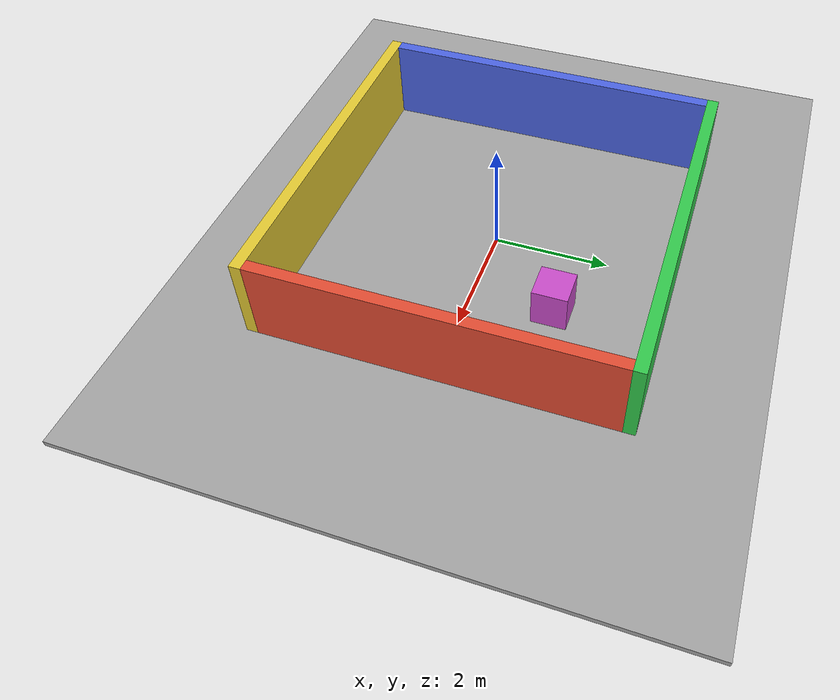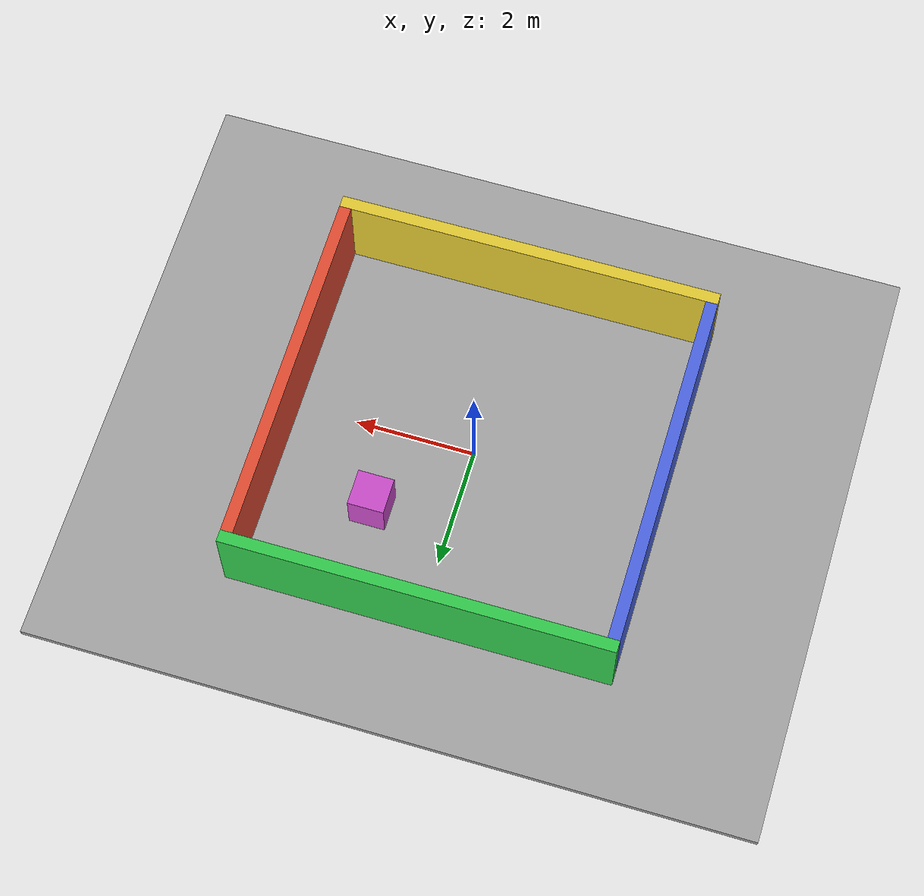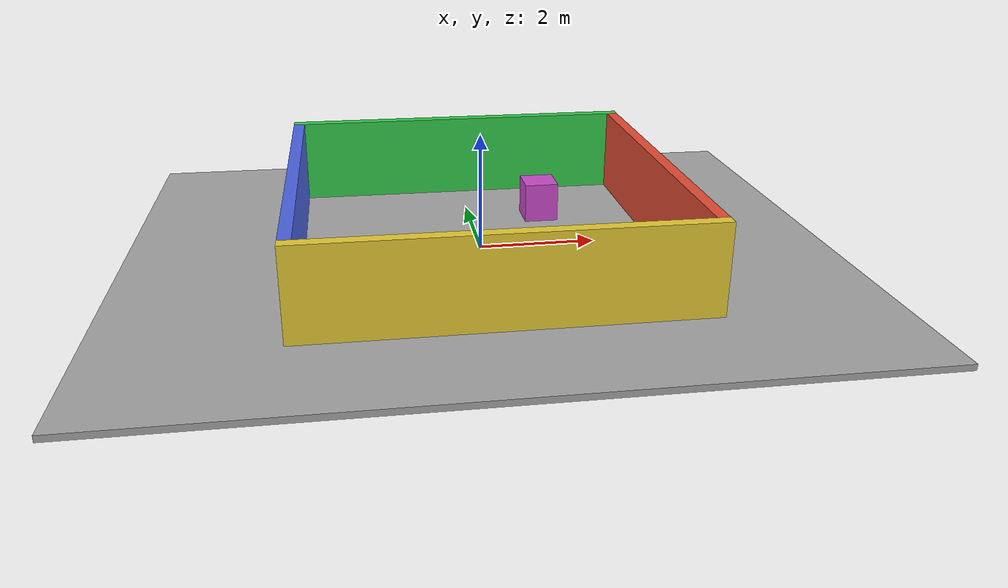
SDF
<?xml version="1.0"?>
<sdf version="1.6">
  <world name="sensor_arena">
    <gravity>0 0 -9.81</gravity>
    <physics name="default" type="ode"><max_step_size>0.001</max_step_size><real_time_update_rate>1000</real_time_update_rate></physics>
    <scene><ambient>0.5 0.5 0.5 1</ambient><background>0.8 0.85 0.9 1</background><shadows>false</shadows></scene>
    <spherical_coordinates><surface_model>EARTH_WGS84</surface_model><latitude_deg>37.5665</latitude_deg><longitude_deg>126.9780</longitude_deg><elevation>0</elevation><heading_deg>0</heading_deg></spherical_coordinates>
    <light name="sun" type="directional"><pose>0 0 8 0 0 0</pose><diffuse>0.8 0.8 0.8 1</diffuse><specular>0.2 0.2 0.2 1</specular><direction>-0.4 0.2 -1</direction><cast_shadows>false</cast_shadows></light>
    <model name="ground"><static>true</static><pose>0 0 -0.05 0 0 0</pose><link name="link">
      <collision name="collision"><geometry><box><size>12 10 0.1</size></box></geometry></collision>
      <visual name="visual"><geometry><box><size>12 10 0.1</size></box></geometry><material><ambient>0.65 0.65 0.65 1</ambient><diffuse>0.65 0.65 0.65 1</diffuse></material></visual>
    </link></model>
    <model name="front_wall"><static>true</static><pose>3.1 0 0.75 0 0 0</pose><link name="link">
      <collision name="collision"><geometry><box><size>0.2 6 1.5</size></box></geometry></collision>
      <visual name="visual"><geometry><box><size>0.2 6 1.5</size></box></geometry><material><ambient>0.9 0.3 0.2 1</ambient><diffuse>0.9 0.3 0.2 1</diffuse></material></visual>
    </link></model>
    <model name="back_wall"><static>true</static><pose>-3.1 0 0.75 0 0 0</pose><link name="link">
      <collision name="collision"><geometry><box><size>0.2 6 1.5</size></box></geometry></collision>
      <visual name="visual"><geometry><box><size>0.2 6 1.5</size></box></geometry><material><ambient>0.3 0.4 0.9 1</ambient><diffuse>0.3 0.4 0.9 1</diffuse></material></visual>
    </link></model>
    <model name="left_wall"><static>true</static><pose>0 3.1 0.75 0 0 0</pose><link name="link">
      <collision name="collision"><geometry><box><size>6.4 0.2 1.5</size></box></geometry></collision>
      <visual name="visual"><geometry><box><size>6.4 0.2 1.5</size></box></geometry><material><ambient>0.2 0.8 0.3 1</ambient><diffuse>0.2 0.8 0.3 1</diffuse></material></visual>
    </link></model>
    <model name="right_wall"><static>true</static><pose>0 -3.1 0.75 0 0 0</pose><link name="link">
      <collision name="collision"><geometry><box><size>6.4 0.2 1.5</size></box></geometry></collision>
      <visual name="visual"><geometry><box><size>6.4 0.2 1.5</size></box></geometry><material><ambient>0.9 0.8 0.2 1</ambient><diffuse>0.9 0.8 0.2 1</diffuse></material></visual>
    </link></model>
    <model name="side_box"><static>true</static><pose>1.3 1.4 0.35 0 0 0</pose><link name="link">
      <collision name="collision"><geometry><box><size>0.6 0.6 0.7</size></box></geometry></collision>
      <visual name="visual"><geometry><box><size>0.6 0.6 0.7</size></box></geometry><material><ambient>0.8 0.3 0.8 1</ambient><diffuse>0.8 0.3 0.8 1</diffuse></material></visual>
    </link></model>
  </world>
</sdf>
